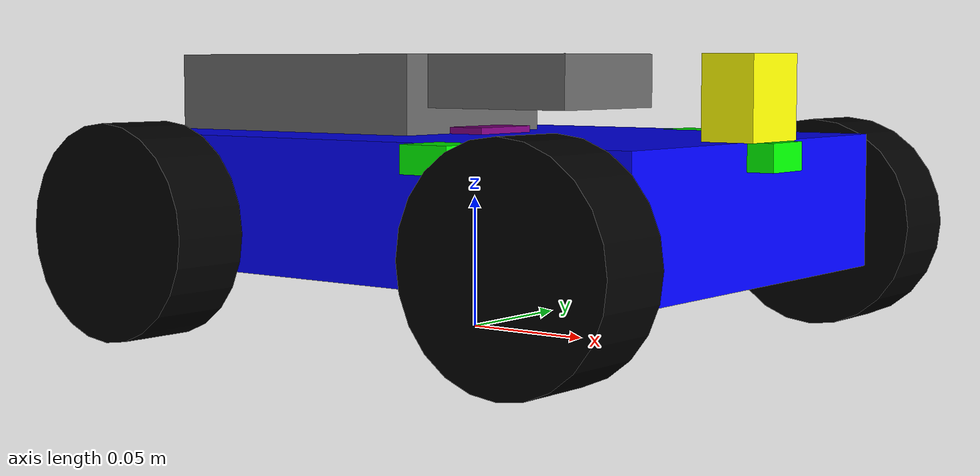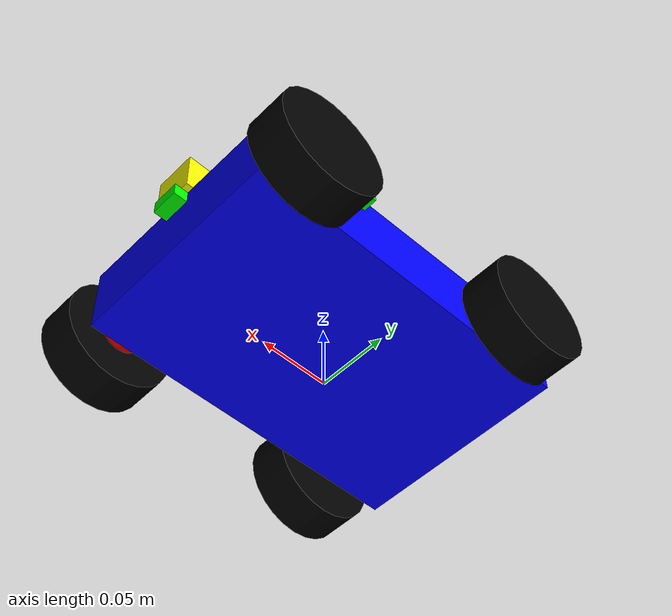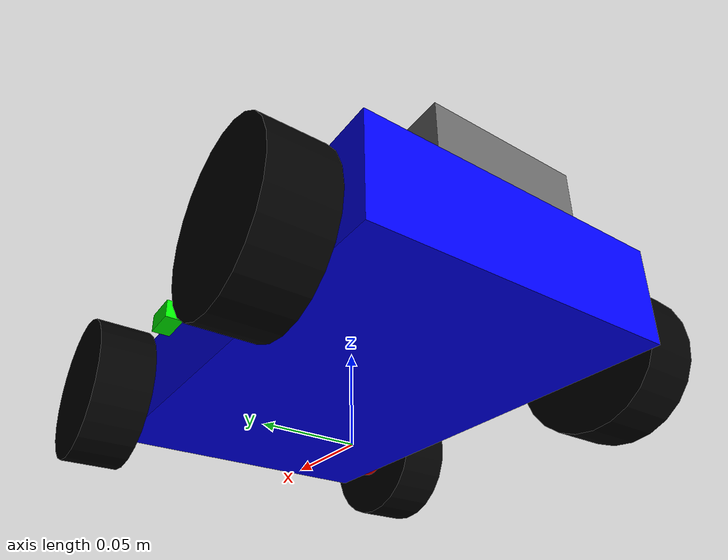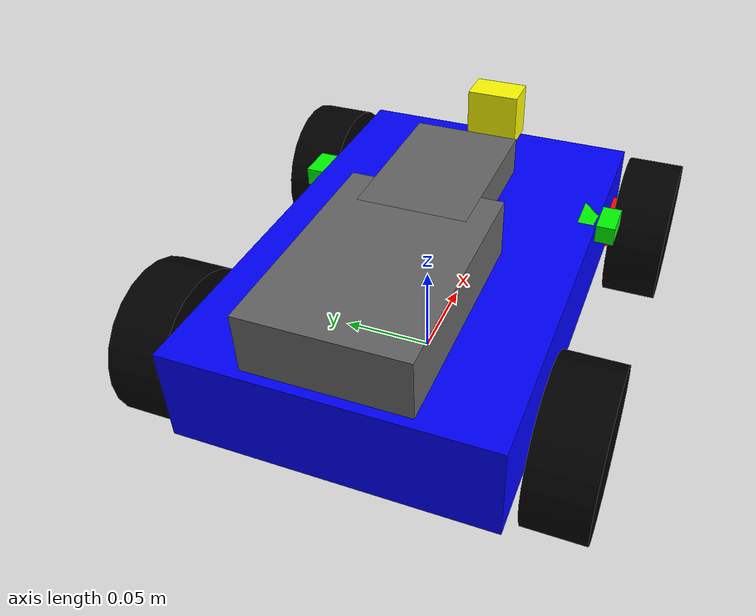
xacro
<?xml version="1.0"?>
<robot xmlns:xacro="http://www.ros.org/wiki/xacro" name="hermes_bot">

  <!-- 1. CHASSIS -->
  <link name="base_footprint"/>
  <link name="base_link">
    <visual><geometry><box size="0.25 0.16 0.05"/></geometry><material name="blue"><color rgba="0 0 1 1"/></material></visual>
    <collision><geometry><box size="0.25 0.16 0.05"/></geometry></collision>
    <inertial><mass value="0.5"/><inertia ixx="0.002" ixy="0" ixz="0" iyy="0.005" iyz="0" izz="0.006"/></inertial>
  </link>
  <joint name="base_joint" type="fixed"><parent link="base_footprint"/><child link="base_link"/><origin xyz="0 0 0.05" rpy="0 0 0"/></joint>

  <!-- 2. REAR DRIVE (N20 Motors) -->
  <link name="rear_left_wheel">
    <visual><geometry><cylinder radius="0.04" length="0.03"/></geometry><material name="black"><color rgba="0 0 0 1"/></material></visual>
    <collision><geometry><cylinder radius="0.04" length="0.03"/></geometry></collision>
    <inertial><mass value="0.1"/><inertia ixx="0.0001" ixy="0" ixz="0" iyy="0.0001" iyz="0" izz="0.0001"/></inertial>
  </link>
  <joint name="rear_left_joint" type="continuous"><parent link="base_link"/><child link="rear_left_wheel"/><origin xyz="-0.08 0.1 -0.01" rpy="1.5708 0 0"/><axis xyz="0 0 1"/></joint>

  <link name="rear_right_wheel">
    <visual><geometry><cylinder radius="0.04" length="0.03"/></geometry><material name="black"><color rgba="0 0 0 1"/></material></visual>
    <collision><geometry><cylinder radius="0.04" length="0.03"/></geometry></collision>
    <inertial><mass value="0.1"/><inertia ixx="0.0001" ixy="0" ixz="0" iyy="0.0001" iyz="0" izz="0.0001"/></inertial>
  </link>
  <joint name="rear_right_joint" type="continuous"><parent link="base_link"/><child link="rear_right_wheel"/><origin xyz="-0.08 -0.1 -0.01" rpy="1.5708 0 0"/><axis xyz="0 0 1"/></joint>

  <!-- 3. FRONT STEERING (Ackermann/Servo) -->
  <link name="front_left_steer_hinge">
    <visual><geometry><sphere radius="0.015"/></geometry><material name="red"><color rgba="1 0 0 1"/></material></visual>
    <inertial><mass value="0.05"/><inertia ixx="0.0001" ixy="0" ixz="0" iyy="0.0001" iyz="0" izz="0.0001"/></inertial>
  </link>
  <joint name="front_left_steer_joint" type="revolute"><parent link="base_link"/><child link="front_left_steer_hinge"/><origin xyz="0.1 0.08 -0.01"/><axis xyz="0 0 1"/><limit lower="-0.5" upper="0.5" effort="10" velocity="1.0"/></joint>

  <link name="front_left_wheel">
    <visual><geometry><cylinder radius="0.04" length="0.03"/></geometry><material name="black"><color rgba="0 0 0 1"/></material></visual>
    <collision><geometry><cylinder radius="0.04" length="0.03"/></geometry></collision>
    <inertial><mass value="0.1"/><inertia ixx="0.0001" ixy="0" ixz="0" iyy="0.0001" iyz="0" izz="0.0001"/></inertial>
  </link>
  <joint name="front_left_wheel_joint" type="continuous"><parent link="front_left_steer_hinge"/><child link="front_left_wheel"/><origin xyz="0 0.02 0" rpy="1.5708 0 0"/><axis xyz="0 0 1"/></joint>

  <link name="front_right_steer_hinge">
    <visual><geometry><sphere radius="0.015"/></geometry><material name="red"><color rgba="1 0 0 1"/></material></visual>
    <inertial><mass value="0.05"/><inertia ixx="0.0001" ixy="0" ixz="0" iyy="0.0001" iyz="0" izz="0.0001"/></inertial>
  </link>
  <joint name="front_right_steer_joint" type="revolute"><parent link="base_link"/><child link="front_right_steer_hinge"/><origin xyz="0.1 -0.08 -0.01"/><axis xyz="0 0 1"/><limit lower="-0.5" upper="0.5" effort="10" velocity="1.0"/></joint>

  <link name="front_right_wheel">
    <visual><geometry><cylinder radius="0.04" length="0.03"/></geometry><material name="black"><color rgba="0 0 0 1"/></material></visual>
    <collision><geometry><cylinder radius="0.04" length="0.03"/></geometry></collision>
    <inertial><mass value="0.1"/><inertia ixx="0.0001" ixy="0" ixz="0" iyy="0.0001" iyz="0" izz="0.0001"/></inertial>
  </link>
  <joint name="front_right_wheel_joint" type="continuous"><parent link="front_right_steer_hinge"/><child link="front_right_wheel"/><origin xyz="0 -0.02 0" rpy="1.5708 0 0"/><axis xyz="0 0 1"/></joint>

  <!-- 4. NAVIGATION SENSORS -->
  <link name="tof_front"><visual><geometry><box size="0.02 0.02 0.01"/></geometry><material name="green"><color rgba="0 1 0 1"/></material></visual></link>
  <joint name="tof_front_j" type="fixed"><parent link="base_link"/><child link="tof_front"/><origin xyz="0.125 0 0.02"/></joint>

  <link name="tof_left"><visual><geometry><box size="0.02 0.02 0.01"/></geometry><material name="green"/></visual></link>
  <joint name="tof_left_j" type="fixed"><parent link="base_link"/><child link="tof_left"/><origin xyz="0.05 0.08 0.02" rpy="0 0 1.5708"/></joint>

  <link name="tof_right"><visual><geometry><box size="0.02 0.02 0.01"/></geometry><material name="green"/></visual></link>
  <joint name="tof_right_j" type="fixed"><parent link="base_link"/><child link="tof_right"/><origin xyz="0.05 -0.08 0.02" rpy="0 0 -1.5708"/></joint>

  <link name="camera_link"><visual><geometry><box size="0.02 0.03 0.03"/></geometry><material name="yellow"><color rgba="1 1 0 1"/></material></visual></link>
  <joint name="camera_j" type="fixed"><parent link="base_link"/><child link="camera_link"/><origin xyz="0.12 0 0.04"/></joint>

  <link name="imu_link"><visual><geometry><box size="0.03 0.03 0.005"/></geometry><material name="purple"><color rgba="0.5 0 0.5 1"/></material></visual></link>
  <joint name="imu_j" type="fixed"><parent link="base_link"/><child link="imu_link"/><origin xyz="0 0 0.025"/></joint>

  <!-- 5. COMPUTING & POWER -->
  <link name="pi_link"><visual><geometry><box size="0.085 0.056 0.02"/></geometry><material name="grey"><color rgba="0.4 0.4 0.4 1"/></material></visual></link>
  <joint name="pi_j" type="fixed"><parent link="base_link"/><child link="pi_link"/><origin xyz="0.02 0 0.045"/></joint>

  <link name="power_block"><visual><geometry><box size="0.12 0.08 0.04"/></geometry><material name="grey"/></visual><inertial><mass value="0.4"/><inertia ixx="0.0001" ixy="0" ixz="0" iyy="0.0001" iyz="0" izz="0.0001"/></inertial></link>
  <joint name="power_j" type="fixed"><parent link="base_link"/><child link="power_block"/><origin xyz="-0.06 0 0.035"/></joint>

  <gazebo>
    <plugin filename="gz-sim-ackermann-steering-system" name="gz::sim::systems::AckermannSteering">
      <left_joint>rear_left_joint</left_joint>
      <right_joint>rear_right_joint</right_joint>
      <left_steering_joint>front_left_steer_joint</left_steering_joint>
      <right_steering_joint>front_right_steer_joint</right_steering_joint>
      <kingpin_width>0.16</kingpin_width>
      <wheelbase>0.18</wheelbase>
      <wheel_radius>0.04</wheel_radius>
      <topic>/cmd_vel</topic>
    </plugin>

    <!-- Imu world system-->
    <plugin filename="gz-sim-imu-system" name="gz::sim::systems::Imu"/>

    <!-- Sensors world system-->
    <plugin filename="gz-sim-sensors-system" name="gz::sim::systems::Sensors">
      <render_engine>ogre2</render_engine>
    </plugin>
  </gazebo>

  <!-- Front ToF -->
  <gazebo reference="tof_front">
    <sensor name="tof_front_sensor" type="gpu_lidar">
      <always_on>1</always_on>
      <update_rate>20</update_rate>
      <topic>/tof_front</topic>
      <gz_frame_id>tof_front</gz_frame_id>
      <visualize>false</visualize>
      <lidar>
        <scan>
          <horizontal>
            <samples>5</samples>
            <resolution>1</resolution>
            <min_angle>-0.0873</min_angle>
            <max_angle> 0.0873</max_angle>
          </horizontal>
          <vertical>
            <samples>1</samples>
            <resolution>1</resolution>
            <min_angle>0</min_angle>
            <max_angle>0</max_angle>
          </vertical>
        </scan>
        <range>
          <min>0.04</min>
          <max>4.00</max>
          <resolution>0.001</resolution>
        </range>
        <noise>
          <type>gaussian</type>
          <mean>0.0</mean>
          <stddev>0.003</stddev>
        </noise>
      </lidar>
    </sensor>
  </gazebo>

  <!-- Left ToF -->
  <gazebo reference="tof_left">
    <sensor name="tof_left_sensor" type="gpu_lidar">
      <always_on>1</always_on>
      <update_rate>20</update_rate>
      <topic>/tof_left</topic>
      <gz_frame_id>tof_left</gz_frame_id>
      <visualize>false</visualize>
      <lidar>
        <scan>
          <horizontal>
            <samples>5</samples>
            <resolution>1</resolution>
            <min_angle>-0.0873</min_angle>
            <max_angle> 0.0873</max_angle>
          </horizontal>
          <vertical>
            <samples>1</samples>
            <resolution>1</resolution>
            <min_angle>0</min_angle>
            <max_angle>0</max_angle>
          </vertical>
        </scan>
        <range>
          <min>0.04</min>
          <max>4.00</max>
          <resolution>0.001</resolution>
        </range>
        <noise>
          <type>gaussian</type>
          <mean>0.0</mean>
          <stddev>0.003</stddev>
        </noise>
      </lidar>
    </sensor>
  </gazebo>

  <!-- Right ToF -->
  <gazebo reference="tof_right">
    <sensor name="tof_right_sensor" type="gpu_lidar">
      <always_on>1</always_on>
      <update_rate>20</update_rate>
      <topic>/tof_right</topic>
      <gz_frame_id>tof_right</gz_frame_id>
      <visualize>false</visualize>
      <lidar>
        <scan>
          <horizontal>
            <samples>5</samples>
            <resolution>1</resolution>
            <min_angle>-0.0873</min_angle>
            <max_angle> 0.0873</max_angle>
          </horizontal>
          <vertical>
            <samples>1</samples>
            <resolution>1</resolution>
            <min_angle>0</min_angle>
            <max_angle>0</max_angle>
          </vertical>
        </scan>
        <range>
          <min>0.04</min>
          <max>4.00</max>
          <resolution>0.001</resolution>
        </range>
        <noise>
          <type>gaussian</type>
          <mean>0.0</mean>
          <stddev>0.003</stddev>
        </noise>
      </lidar>
    </sensor>
  </gazebo>

  <!-- IMU (MPU-6050) -->
  <gazebo reference="imu_link">
    <sensor name="imu_sensor" type="imu">
      <always_on>1</always_on>
      <update_rate>100</update_rate>
      <topic>/imu</topic>
      <gz_frame_id>imu_link</gz_frame_id>
      <imu>
        <angular_velocity>
          <x><noise type="gaussian"><mean>0.0</mean><stddev>0.009</stddev></noise></x>
          <y><noise type="gaussian"><mean>0.0</mean><stddev>0.009</stddev></noise></y>
          <z><noise type="gaussian"><mean>0.0</mean><stddev>0.009</stddev></noise></z>
        </angular_velocity>
        <linear_acceleration>
          <x><noise type="gaussian"><mean>0.0</mean><stddev>0.021</stddev></noise></x>
          <y><noise type="gaussian"><mean>0.0</mean><stddev>0.021</stddev></noise></y>
          <z><noise type="gaussian"><mean>0.0</mean><stddev>0.021</stddev></noise></z>
        </linear_acceleration>
      </imu>
    </sensor>
  </gazebo>

</robot>
